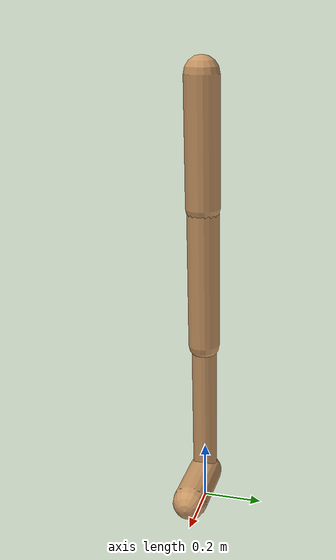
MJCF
<mujoco model="walker2d">
  <compiler angle="degree" coordinate="global" inertiafromgeom="true" />
  <default>
    <joint armature="0.01" damping=".1" limited="true" />
    <geom conaffinity="0" condim="3" contype="1" density="1000" friction="0.8 .1 .1" rgba="0.8 0.6 .4 1" />
  </default>
  <option integrator="RK4" timestep="0.002" />
  <worldbody>

    <body name="torso" pos="0 0 0.022071837284218746">
      <joint armature="0" axis="1 0 0" damping="0" limited="false" name="ignorex" pos="0 0 0" stiffness="0" type="slide" />
      <joint armature="0" axis="0 0 1" damping="0" limited="false" name="ignorez" pos="0 0 0" ref="1.25" stiffness="0" type="slide" />
      <joint armature="0" axis="0 1 0" damping="0" limited="false" name="ignorey" pos="0 0 0" stiffness="0" type="hinge" />
      <geom fromto="0 0 1.45 0 0 1.05" name="torso_geom" size="0.054863089455482045" type="capsule" />
      <body name="thigh">
        <joint axis="0 -1 0" name="thigh_joint" pos="0 0 1.05" range="-150 0" type="hinge" />
        <geom fromto="0.0 0.0 1.05 0.0 0.0 0.5895449191811595" name="thigh_geom" size="0.05135730479158893" type="capsule" />
        <body name="leg" pos="0.0 0.0 -0.010455080818840501">
          <joint axis="0 -1 0" name="leg_joint" pos="0 0 0.6" range="-150 0" type="hinge" />
          <geom fromto="0.0 0.0 0.6 0.0 0.0 0.08838324353462172" name="leg_geom" size="0.04108584383327114" type="capsule" />
          <body name="foot" pos="0.0 0.0 -0.011616756465378283">
            <joint axis="0 -1 0" name="foot_joint" pos="0 0 0.1" range="-45 45" type="hinge" />
            <geom fromto="0.0 0.0 0.1 0.19508812706340573 0.0 0.1" name="foot_geom" size="0.057130755590596015" type="capsule" />
          </body>
        </body>
      </body>

      <body name="thigh_left">
        <joint axis="0 -1 0" name="thigh_left_joint" pos="0 0 1.05" range="-150 0" type="hinge" />
        <geom fromto="0.0 0.0 1.05 0.0 0.0 0.5895449191811595" name="thigh_left_geom" rgba=".7 .3 .6 1" size="0.05135730479158893" type="capsule" />
        <body name="leg_left" pos="0.0 0.0 -0.010455080818840501">
          <joint axis="0 -1 0" name="leg_left_joint" pos="0 0 0.6" range="-150 0" type="hinge" />
          <geom fromto="0.0 0.0 0.6 0.0 0.0 0.08838324353462172" name="leg_left_geom" rgba=".7 .3 .6 1" size="0.04108584383327114" type="capsule" />
          <body name="foot_left" pos="0.0 0.0 -0.011616756465378283">
            <joint axis="0 -1 0" name="foot_left_joint" pos="0 0 0.1" range="-45 45" type="hinge" />
            <geom fromto="0.0 0.0 0.1 0.19508812706340573 0.0 0.1" name="foot_left_geom" rgba=".7 .3 .6 1" size="0.057130755590596015" type="capsule" />
          </body>
        </body>
      </body>
    </body>
  </worldbody>
  <actuator>

    <motor ctrllimited="true" ctrlrange="-1.0 1.0" gear="100" joint="thigh_joint" />
    <motor ctrllimited="true" ctrlrange="-1.0 1.0" gear="100" joint="leg_joint" />
    <motor ctrllimited="true" ctrlrange="-1.0 1.0" gear="100" joint="foot_joint" />
    <motor ctrllimited="true" ctrlrange="-1.0 1.0" gear="100" joint="thigh_left_joint" />
    <motor ctrllimited="true" ctrlrange="-1.0 1.0" gear="100" joint="leg_left_joint" />
    <motor ctrllimited="true" ctrlrange="-1.0 1.0" gear="100" joint="foot_left_joint" />

  </actuator>
</mujoco>
